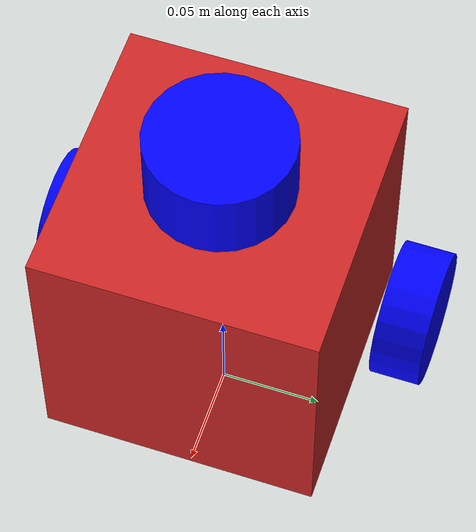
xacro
<?xml version="1.0"?>

<robot name="pibot" xmlns:xacro="http://ros.org/wiki/xacro">

    <xacro:include filename="$(find pibot_description)/urdf/pibot_gazebo.xacro" />
    <xacro:include filename="$(find pibot_description)/urdf/pibot_ros2control.xacro" />

    <link name="base_footprint"/>

    <link name="base_link">
        <inertial>
        <origin xyz="0 0 0.07" rpy="0.0 0.25 0.3" />
        <mass value="8.2573504e-01"/>
        <inertia ixx="2.2124416e-02" ixy="-1.2294101e-04" ixz="3.4938785e-04"
                iyy="2.1193702e-02" iyz="-5.0120904e-05"
                izz="2.0064271e-02" />
        </inertial>

        <visual>
        <origin xyz="0 0 0.07" rpy="0 0 0" />
        <geometry>
            <box size="0.135 0.135 0.14" />
        </geometry>
        <material name="red"/>
        </visual>

        <collision>
        <origin xyz="0 0 0.07" rpy="0 0 0" />
        <geometry>
            <box size="0.135 0.135 0.14" />
        </geometry>
        </collision>
    </link>

    <joint name="base_joint" type="fixed">
        <parent link="base_footprint"/>
        <child link="base_link" />
        <origin xyz="0 0 0.033" rpy="0 0 0"/>
    </joint>

    <material name="blue">
        <color rgba="0 0 1 1"/>
    </material>
    <material name="black">
        <color rgba="0 0 0 1"/>
    </material>
    <material name="silver">
        <color rgba="0.79 0.82 0.93 1"/>
    </material>
    <material name="dark_grey">
        <color rgba="0.3 0.3 0.3 1"/>
    </material>

    <link name="wheel_left_link">
        <visual>
            <origin xyz="0 0 0" rpy="1.5708 0 0" />
            <geometry>
                <cylinder radius="0.0335" length="0.025"/>
            </geometry>
            <material name="blue"/>
        </visual>
        <collision>
            <origin xyz="0 0 0" rpy="1.5708 0 0" />
            <geometry>
                <cylinder radius="0.0335" length="0.025"/>
            </geometry>
        </collision>
        <inertial>
            <origin xyz="0 0.014 0" rpy="0 0 0" />
            <mass value="0.0530086043217644" />
            <inertia ixx="1.8792911368909E-05"  ixy="3.31256392204584E-10" ixz="-1.14082001662767E-08"
                    iyy="3.11510738759073E-05" iyz="-3.60499245082192E-10"
                    izz="1.88266886146847E-05" />
        </inertial>
    </link>

    <joint name="wheel_left_joint" type="continuous">
        <parent link="base_link"/>
        <child link="wheel_left_link"/>
        <origin xyz="-0.0355 0.08675 0.01839" rpy="0 0 0" />
        <axis xyz="0 1 0"/>
    </joint>

    <link name="wheel_right_link">
        <visual>
            <origin xyz="0 0 0" rpy="1.5708 0 0" />
            <geometry>
                <cylinder radius="0.0335" length="0.025"/>
            </geometry>
            <material name="blue"/>
        </visual>
        <collision>
            <origin xyz="0 0 0" rpy="1.5708 0 0" />
            <geometry>
                <cylinder radius="0.0335" length="0.025"/>
        </geometry>
        </collision>
        <inertial>
            <origin xyz="0 -0.014 0" rpy="0 0 0" />
            <mass value="0.0530086090966721" />
            <inertia ixx="1.88176298336665E-05" ixy="-4.8444933029987E-10" ixz="1.88163708851143E-08"
                    iyy="3.11510738647764E-05" iyz="-6.93560663069607E-11"
                    izz="1.8801969558182E-05" />
        </inertial>
    </link>

    <joint name="wheel_right_joint" type="continuous">
        <parent link="base_link"/>
        <child link="wheel_right_link"/>
        <origin xyz="-0.0355 -0.08675 0.01839" rpy="0 0 0" />
        <axis xyz="0 1 0"/>
    </joint>

    <joint name="laser_joint" type="fixed">
        <parent link="base_link"/>
        <child link="laser_link"/>
        <origin xyz="0 0 0.1526" rpy="0 0 0"/>
    </joint>

    <link name="laser_link">
        <visual>
            <origin xyz="0 0 0" rpy="0 0 0"/>
            <geometry>
                <cylinder radius="0.035" length="0.05"/>
            </geometry>
            <material name="blue"/>
        </visual>

        <collision>
            <origin xyz="0 0 0" rpy="0 0 0"/>
            <geometry>
                <cylinder radius="0.035" length="0.05"/>
            </geometry>
        </collision>

        <inertial>
            <origin xyz="0 0 0" rpy="0 0 0"/>
            <mass value="0.17"/>
            <inertia ixx="0.0001" ixy="0.0" ixz="0.0"
                    iyy="0.0001" iyz="0.0"
                    izz="0.0001"/>
        </inertial>
    </link>

    <link name="caster_wheel_link">
        <visual>
            <origin xyz="0 0 0" rpy="0 0 0" />
            <geometry>
                <sphere radius="0.015"/>
            </geometry>
            <material name="silver"/>
        </visual>

        <collision>
            <origin xyz="0 0 0" rpy="0 0 0" />
            <geometry>
                <sphere radius="0.0151"/>
            </geometry>
        </collision>

        <inertial>
            <origin xyz="0 0 0" rpy="0 0 0" />
            <mass value="0.05"/>
            <inertia ixx="4.5e-06" ixy="0.0" ixz="0.0"
                    iyy="4.5e-06" iyz="0.0"
                    izz="4.5e-06"/>
        </inertial>
    </link>

    <joint name="caster_wheel_joint" type="fixed">
        <parent link="base_link"/>
        <child link="caster_wheel_link"/>
        <origin xyz="0.05 0 0" rpy="0 0 0"/>
    </joint>

    <link name="imu_link">
        <visual>
            <geometry>
                <box size="0.01 0.01 0.005"/>
            </geometry>
            <material name="black"/>
        </visual>
        <inertial>
            <mass value="0.01"/>
            <inertia ixx="1e-5" ixy="0" ixz="0" iyy="1e-5" iyz="0" izz="1e-5"/>
        </inertial>
    </link>

    <joint name="imu_joint" type="fixed">
        <parent link="base_link"/>
        <child link="imu_link"/>
        <origin xyz="0.0225 0 0" rpy="0 0 0"/>
    </joint>

</robot>
